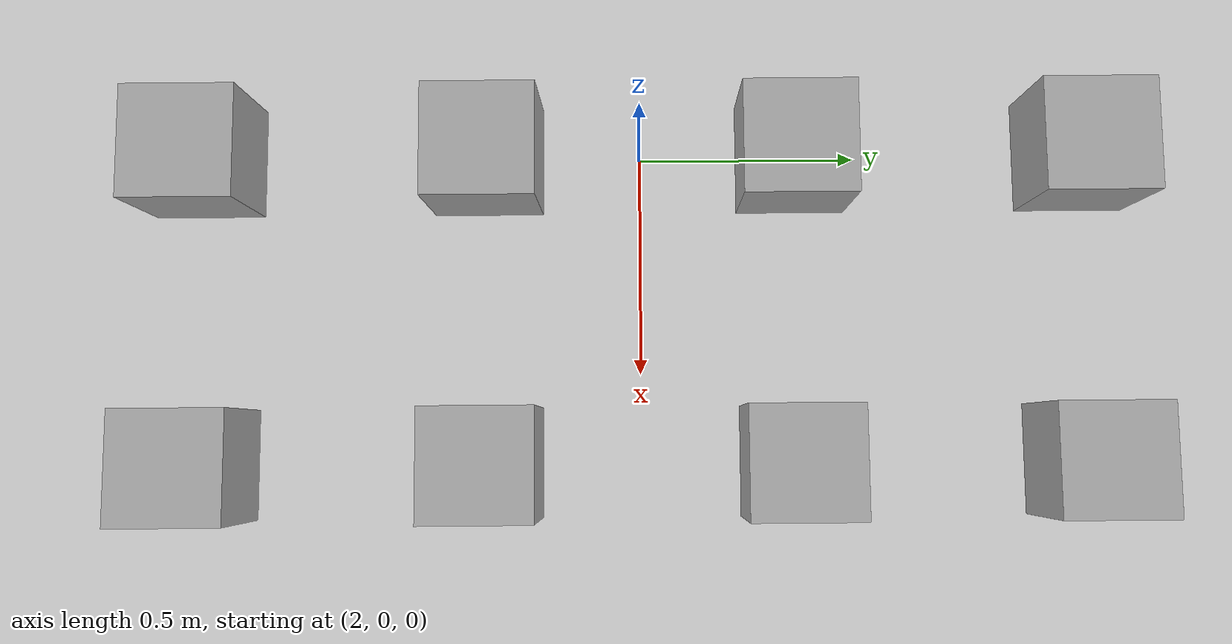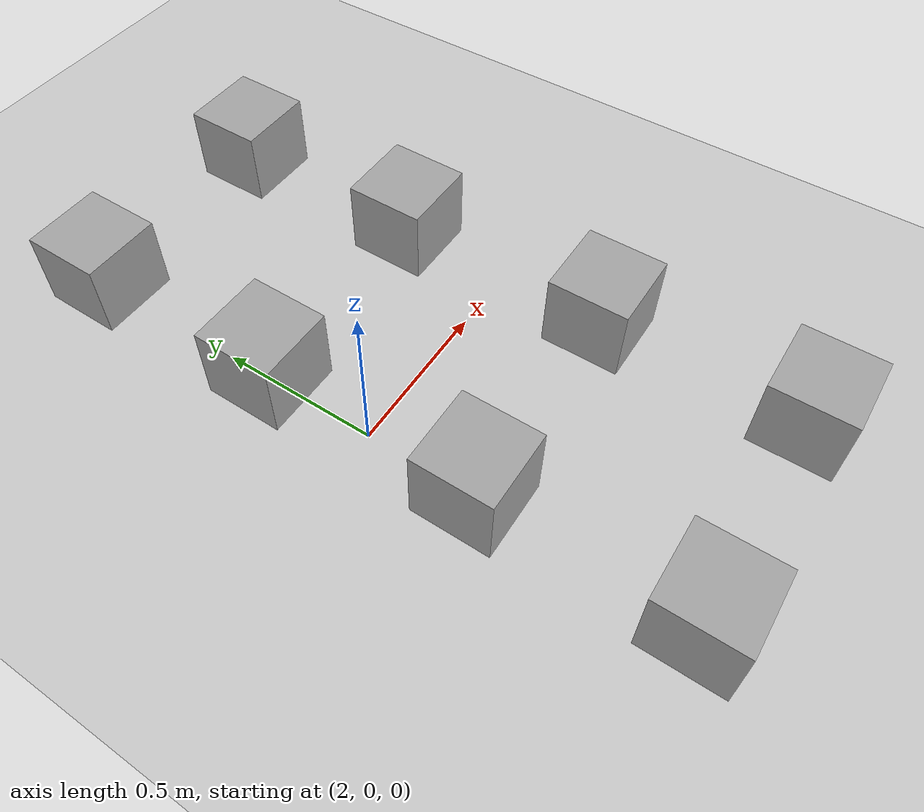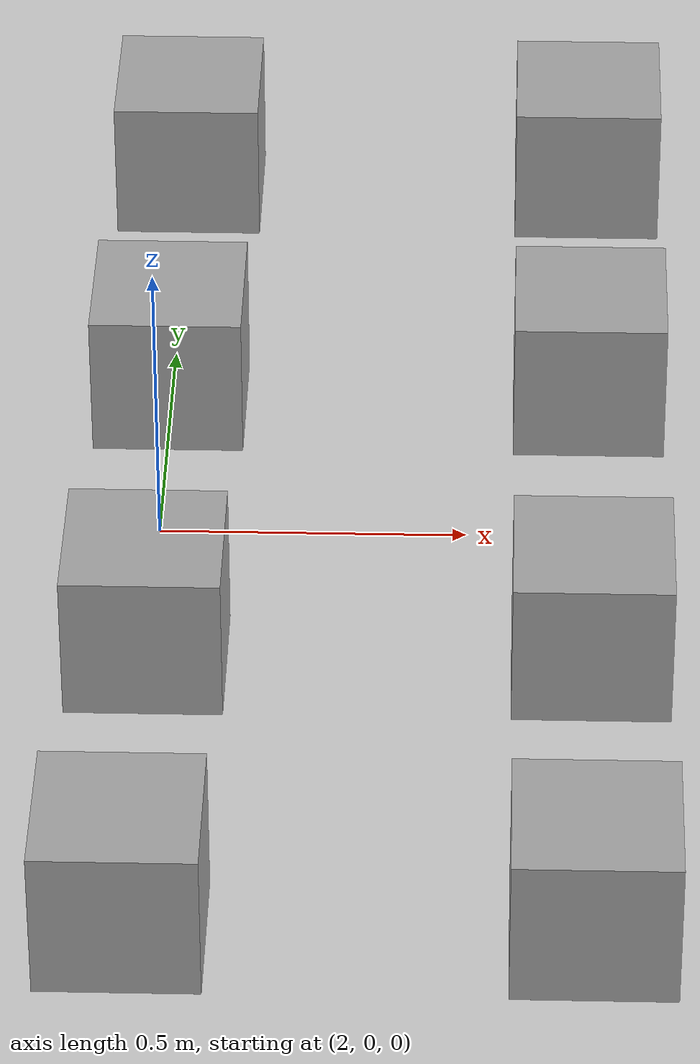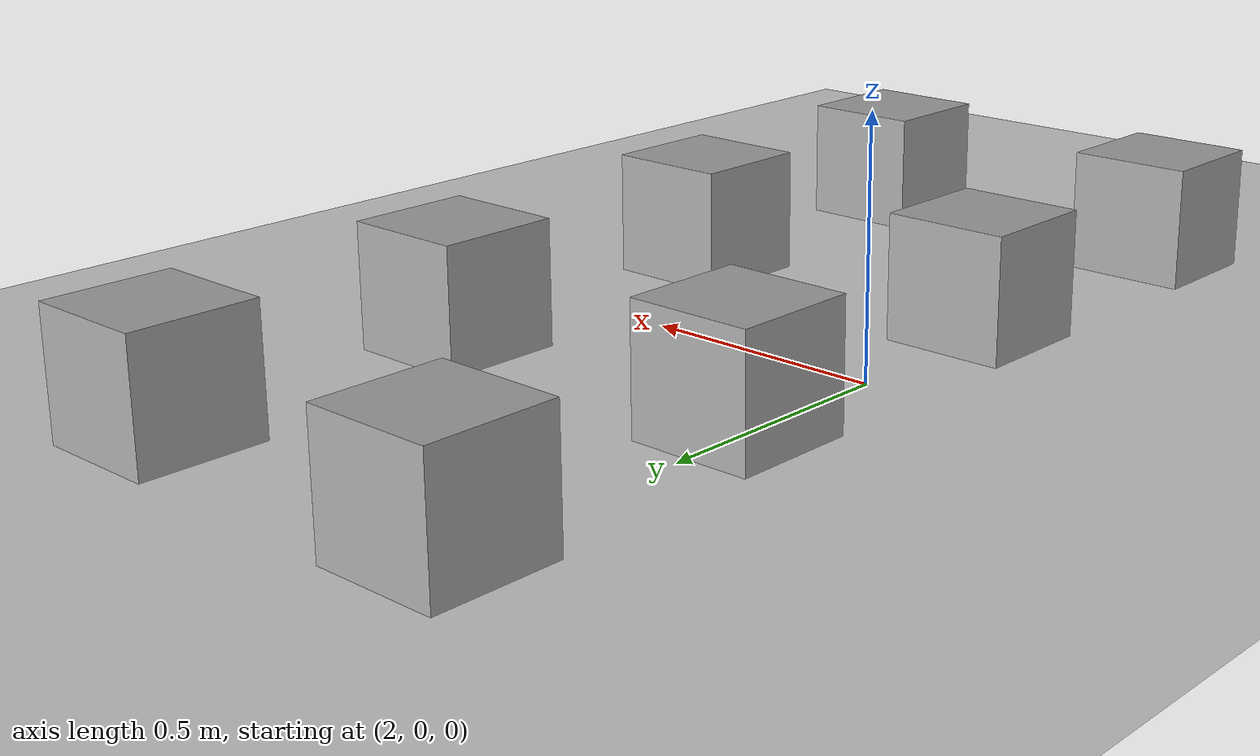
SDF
<sdf version="1.7">
 <world name="default">
  <light name="sun" type="directional">
   <pose>0 0 10 0 -0 0</pose>
   <diffuse>0.8 0.8 0.8 1</diffuse>
   <specular>0.2 0.2 0.2 1</specular>
   <attenuation>
    <range>1000</range>
    <constant>0.9</constant>
    <linear>0.01</linear>
    <quadratic>0.001</quadratic>
   </attenuation>
   <direction>-0.5 0.1 -0.9</direction>
   <spot><inner_angle>0</inner_angle><outer_angle>0</outer_angle><falloff>0</falloff></spot>
  </light>
  <model name="ground_plane">
   <static>1</static>
   <link name="link">
    <collision name="collision">
     <geometry><plane><normal>0 0 1</normal><size>100 100</size></plane></geometry>
     <surface><friction><ode><mu>100</mu><mu2>50</mu2></ode></friction></surface>
    </collision>
    <visual name="visual">
     <cast_shadows>0</cast_shadows>
     <geometry><plane><normal>0 0 1</normal><size>100 100</size></plane></geometry>
     <material>
      <script><uri>file://media/materials/scripts/gazebo.material</uri><name>Gazebo/Grey</name></script>
     </material>
    </visual>
   </link>
  </model>
  <model name="target_cube_r0_c0">
   <static>1</static>
   <pose>2.0 1.0 0.125 0 0 0</pose>
   <link name="link">
    <collision name="collision"><geometry><box><size>0.25 0.25 0.25</size></box></geometry></collision>
    <visual name="visual">
     <geometry><box><size>0.25 0.25 0.25</size></box></geometry>
     <material>
      <ambient>0.65 0.65 0.65 1</ambient>
      <diffuse>0.65 0.65 0.65 1</diffuse>
      <specular>0.2 0.2 0.2 1</specular>
     </material>
    </visual>
   </link>
  </model>
  <model name="target_cube_r0_c1">
   <static>1</static>
   <pose>2.0 0.35 0.125 0 0 0</pose>
   <link name="link">
    <collision name="collision"><geometry><box><size>0.25 0.25 0.25</size></box></geometry></collision>
    <visual name="visual">
     <geometry><box><size>0.25 0.25 0.25</size></box></geometry>
     <material>
      <ambient>0.65 0.65 0.65 1</ambient>
      <diffuse>0.65 0.65 0.65 1</diffuse>
      <specular>0.2 0.2 0.2 1</specular>
     </material>
    </visual>
   </link>
  </model>
  <model name="target_cube_r0_c2">
   <static>1</static>
   <pose>2.0 -0.35 0.125 0 0 0</pose>
   <link name="link">
    <collision name="collision"><geometry><box><size>0.25 0.25 0.25</size></box></geometry></collision>
    <visual name="visual">
     <geometry><box><size>0.25 0.25 0.25</size></box></geometry>
     <material>
      <ambient>0.65 0.65 0.65 1</ambient>
      <diffuse>0.65 0.65 0.65 1</diffuse>
      <specular>0.2 0.2 0.2 1</specular>
     </material>
    </visual>
   </link>
  </model>
  <model name="target_cube_r0_c3">
   <static>1</static>
   <pose>2.0 -1.0 0.125 0 0 0</pose>
   <link name="link">
    <collision name="collision"><geometry><box><size>0.25 0.25 0.25</size></box></geometry></collision>
    <visual name="visual">
     <geometry><box><size>0.25 0.25 0.25</size></box></geometry>
     <material>
      <ambient>0.65 0.65 0.65 1</ambient>
      <diffuse>0.65 0.65 0.65 1</diffuse>
      <specular>0.2 0.2 0.2 1</specular>
     </material>
    </visual>
   </link>
  </model>
  <model name="target_cube_r1_c0">
   <static>1</static>
   <pose>2.7 1.0 0.125 0 0 0</pose>
   <link name="link">
    <collision name="collision"><geometry><box><size>0.25 0.25 0.25</size></box></geometry></collision>
    <visual name="visual">
     <geometry><box><size>0.25 0.25 0.25</size></box></geometry>
     <material>
      <ambient>0.65 0.65 0.65 1</ambient>
      <diffuse>0.65 0.65 0.65 1</diffuse>
      <specular>0.2 0.2 0.2 1</specular>
     </material>
    </visual>
   </link>
  </model>
  <model name="target_cube_r1_c1">
   <static>1</static>
   <pose>2.7 0.35 0.125 0 0 0</pose>
   <link name="link">
    <collision name="collision"><geometry><box><size>0.25 0.25 0.25</size></box></geometry></collision>
    <visual name="visual">
     <geometry><box><size>0.25 0.25 0.25</size></box></geometry>
     <material>
      <ambient>0.65 0.65 0.65 1</ambient>
      <diffuse>0.65 0.65 0.65 1</diffuse>
      <specular>0.2 0.2 0.2 1</specular>
     </material>
    </visual>
   </link>
  </model>
  <model name="target_cube_r1_c2">
   <static>1</static>
   <pose>2.7 -0.35 0.125 0 0 0</pose>
   <link name="link">
    <collision name="collision"><geometry><box><size>0.25 0.25 0.25</size></box></geometry></collision>
    <visual name="visual">
     <geometry><box><size>0.25 0.25 0.25</size></box></geometry>
     <material>
      <ambient>0.65 0.65 0.65 1</ambient>
      <diffuse>0.65 0.65 0.65 1</diffuse>
      <specular>0.2 0.2 0.2 1</specular>
     </material>
    </visual>
   </link>
  </model>
  <model name="target_cube_r1_c3">
   <static>1</static>
   <pose>2.7 -1.0 0.125 0 0 0</pose>
   <link name="link">
    <collision name="collision"><geometry><box><size>0.25 0.25 0.25</size></box></geometry></collision>
    <visual name="visual">
     <geometry><box><size>0.25 0.25 0.25</size></box></geometry>
     <material>
      <ambient>0.65 0.65 0.65 1</ambient>
      <diffuse>0.65 0.65 0.65 1</diffuse>
      <specular>0.2 0.2 0.2 1</specular>
     </material>
    </visual>
   </link>
  </model>
  <gravity>0 0 -9.8</gravity>
  <magnetic_field>6e-06 2.3e-05 -4.2e-05</magnetic_field>
  <atmosphere type="adiabatic"/>
  <physics type="ode">
   <max_step_size>0.001</max_step_size>
   <real_time_factor>1</real_time_factor>
   <real_time_update_rate>1000</real_time_update_rate>
  </physics>
  <scene><ambient>0.4 0.4 0.4 1</ambient><background>0.7 0.7 0.7 1</background><shadows>1</shadows></scene>
  <audio><device>default</device></audio>
  <spherical_coordinates>
   <surface_model>EARTH_WGS84</surface_model>
   <latitude_deg>0</latitude_deg>
   <longitude_deg>0</longitude_deg>
   <elevation>0</elevation>
   <heading_deg>0</heading_deg>
  </spherical_coordinates>
 </world>
</sdf>
